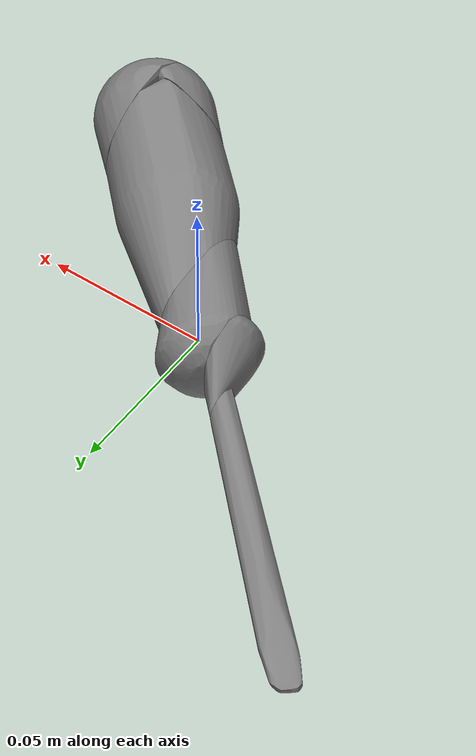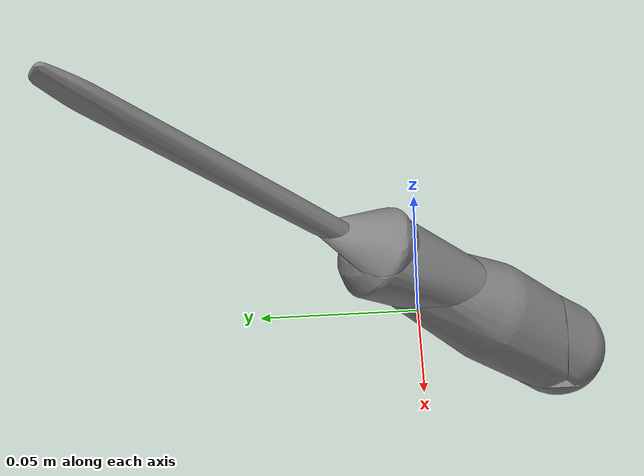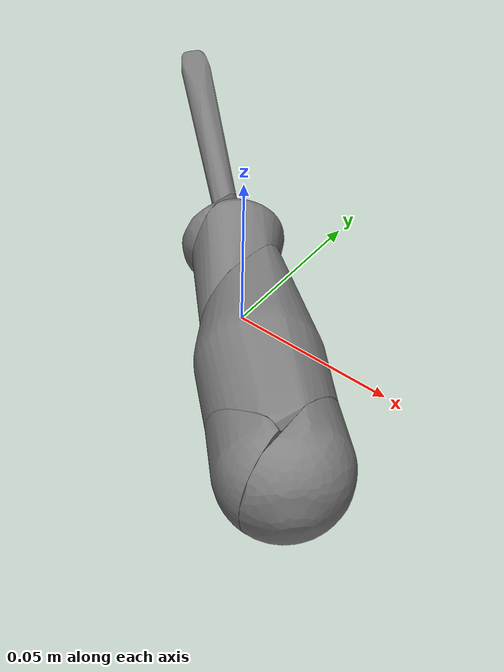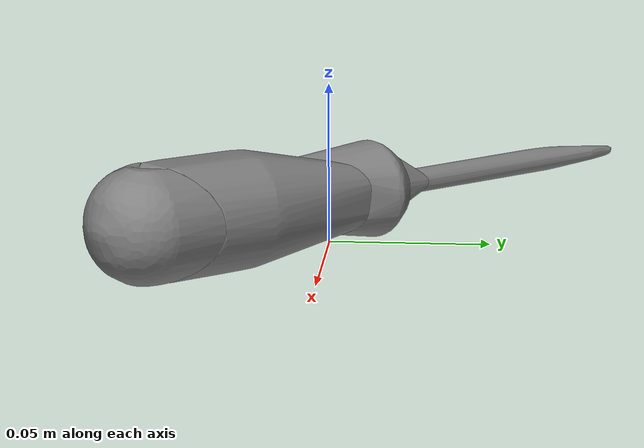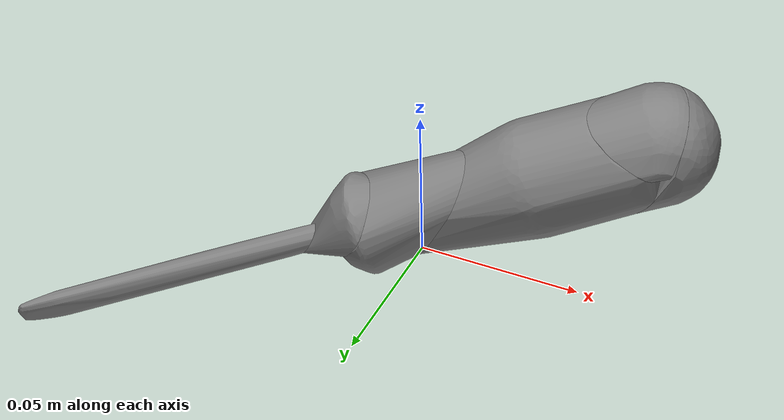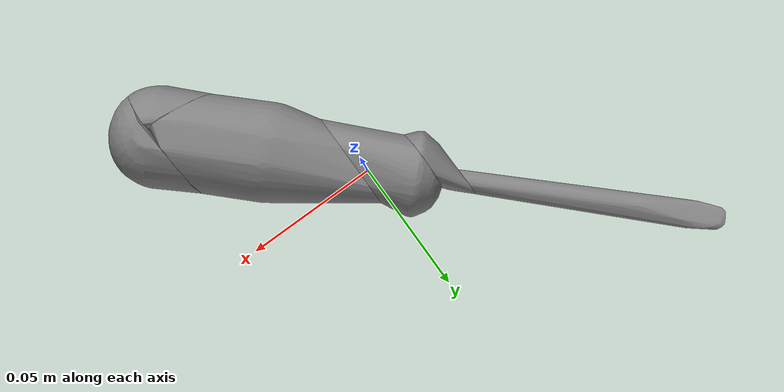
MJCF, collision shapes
<mujoco model="ycb_044_flat_screwdriver">
  <compiler meshdir="meshes" texturedir="meshes" angle="radian"/>
  <default>
    <default class="visual"><geom contype="0" conaffinity="0" group="2" density="0"/></default>
    <default class="collision"><geom group="3"/></default>
  </default>
  <asset>
    <texture name="ycb_044_flat_screwdriver_tex" type="2d" file="ycb_044_flat_screwdriver_texture.png"/>
    <material name="ycb_044_flat_screwdriver_mat" texture="ycb_044_flat_screwdriver_tex" specular="0.2" shininess="0.3"/>
    <mesh name="ycb_044_flat_screwdriver_visual" file="ycb_044_flat_screwdriver_visual.obj"/>
    <mesh name="ycb_044_flat_screwdriver_hull0" file="ycb_044_flat_screwdriver_hull0.obj"/>
    <mesh name="ycb_044_flat_screwdriver_hull1" file="ycb_044_flat_screwdriver_hull1.obj"/>
    <mesh name="ycb_044_flat_screwdriver_hull2" file="ycb_044_flat_screwdriver_hull2.obj"/>
    <mesh name="ycb_044_flat_screwdriver_hull3" file="ycb_044_flat_screwdriver_hull3.obj"/>
    <mesh name="ycb_044_flat_screwdriver_hull4" file="ycb_044_flat_screwdriver_hull4.obj"/>
    <mesh name="ycb_044_flat_screwdriver_hull5" file="ycb_044_flat_screwdriver_hull5.obj"/>
  </asset>
  <worldbody>
    <body name="object" pos="0 0 0">
      <freejoint name="object_free"/>
      <geom type="mesh" mesh="ycb_044_flat_screwdriver_visual" material="ycb_044_flat_screwdriver_mat" class="visual"/>
      <geom type="mesh" mesh="ycb_044_flat_screwdriver_hull0" class="collision"/>
      <geom type="mesh" mesh="ycb_044_flat_screwdriver_hull1" class="collision"/>
      <geom type="mesh" mesh="ycb_044_flat_screwdriver_hull2" class="collision"/>
      <geom type="mesh" mesh="ycb_044_flat_screwdriver_hull3" class="collision"/>
      <geom type="mesh" mesh="ycb_044_flat_screwdriver_hull4" class="collision"/>
      <geom type="mesh" mesh="ycb_044_flat_screwdriver_hull5" class="collision"/>
    </body>
  </worldbody>
</mujoco>
